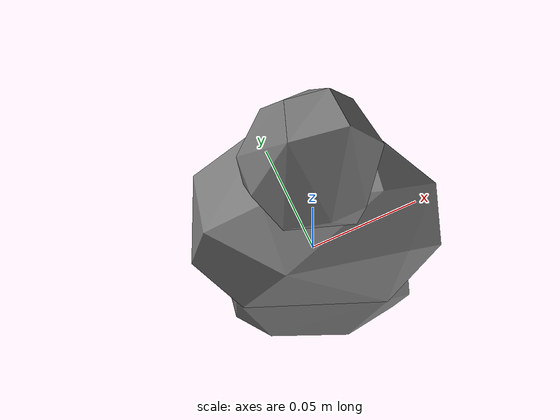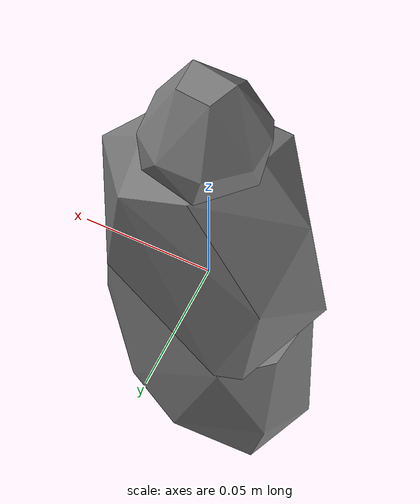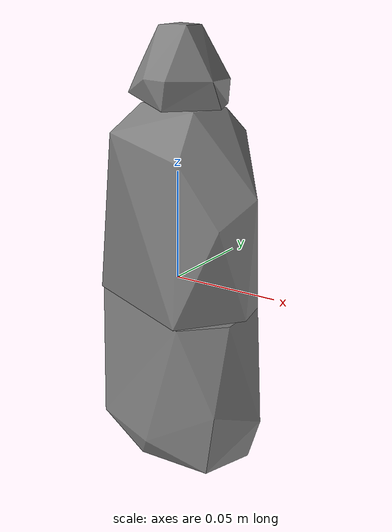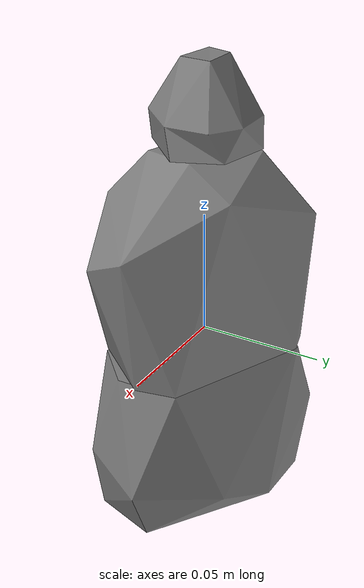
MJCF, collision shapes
<mujoco model="mustard_bottle">
  <compiler angle="radian" />

  <asset>
    <mesh name="mustard_bottle_visual_mesh" file="mustard_bottle/textured.obj" />
    <mesh name="mustard_bottle_collision_mesh_0" file="mustard_bottle/textured_coacd_0.stl" />
    <mesh name="mustard_bottle_collision_mesh_1" file="mustard_bottle/textured_coacd_1.stl" />
    <mesh name="mustard_bottle_collision_mesh_2" file="mustard_bottle/textured_coacd_2.stl" />
    <texture name="mustard_bottle_texture" type="2d" file="mustard_bottle/texture_map.png" />
    <material name="mustard_bottle_material" texture="mustard_bottle_texture" />
  </asset>

  <worldbody>
    <body name="mustard_bottle" pos="0 0 0" euler="0 0 0">
      <freejoint name="mustard_bottle_joint" />
      <geom name="mustard_bottle_visual_geom" type="mesh" mesh="mustard_bottle_visual_mesh" material="mustard_bottle_material" pos="0.015054331427098055 0.02310937618792766 -0.07504227100332876" euler="0 0 0" contype="0" conaffinity="0" group="0" />
      <geom name="mustard_bottle_collision_geom_0" type="mesh" mesh="mustard_bottle_collision_mesh_0" pos="0.015054331427098055 0.02310937618792766 -0.07504227100332876" euler="0 0 0" contype="1" conaffinity="1" group="3" />
      <geom name="mustard_bottle_collision_geom_1" type="mesh" mesh="mustard_bottle_collision_mesh_1" pos="0.015054331427098055 0.02310937618792766 -0.07504227100332876" euler="0 0 0" contype="1" conaffinity="1" group="3" />
      <geom name="mustard_bottle_collision_geom_2" type="mesh" mesh="mustard_bottle_collision_mesh_2" pos="0.015054331427098055 0.02310937618792766 -0.07504227100332876" euler="0 0 0" contype="1" conaffinity="1" group="3" />
      <inertial pos="0 0 0" euler="0 0 0" mass="0.603" diaginertia="0.001 0.001 0.001" />
    </body>
  </worldbody>
</mujoco>
